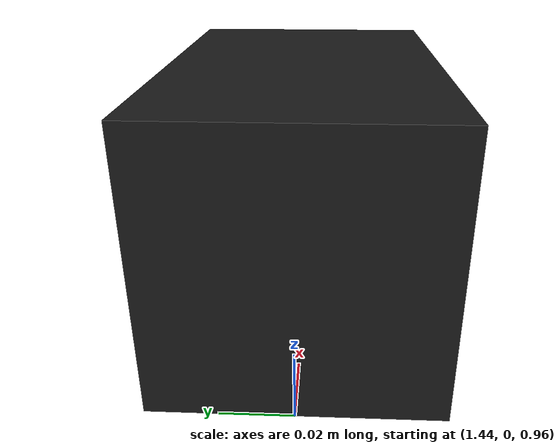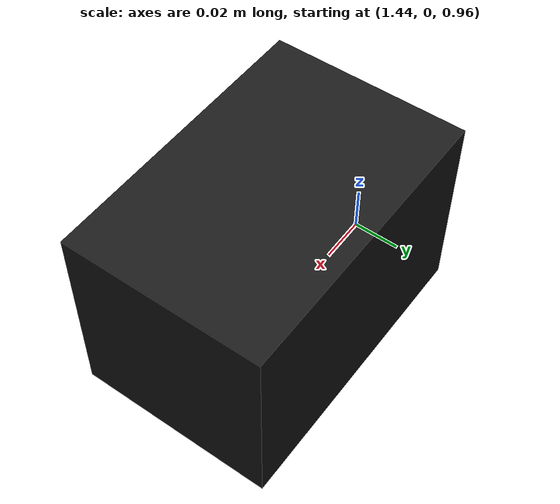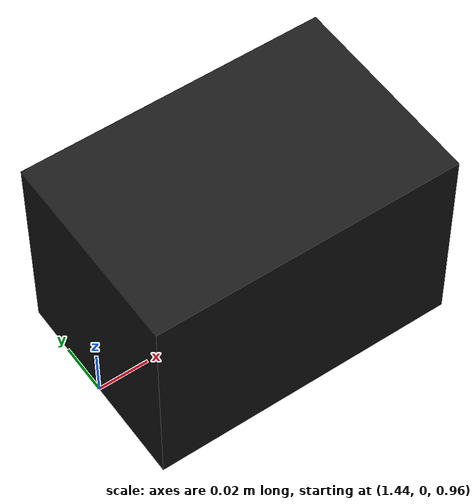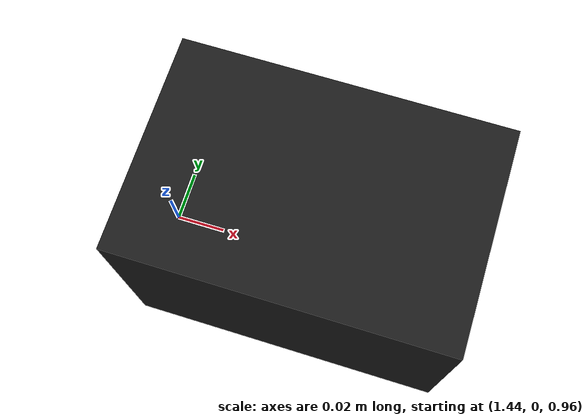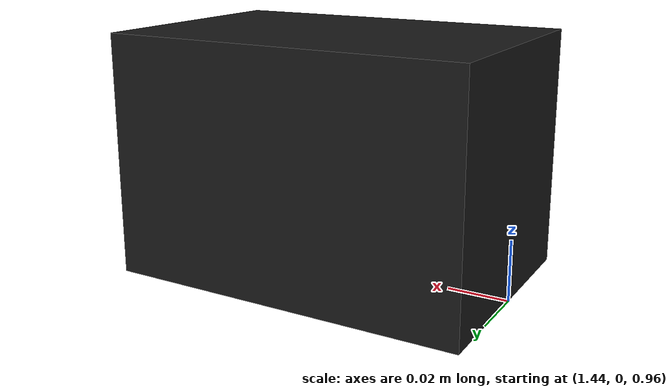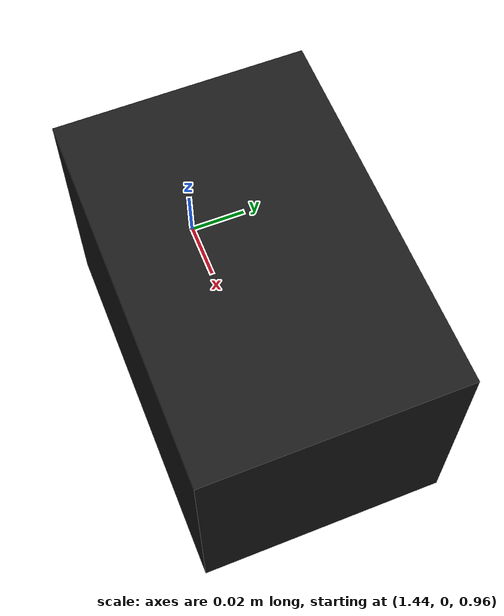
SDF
<sdf version='1.10'>
  <world name='empty'>
    <physics name='1ms' type='ignored'>
      <max_step_size>0.005</max_step_size>
      <real_time_factor>1</real_time_factor>
      <real_time_update_rate>500</real_time_update_rate>
    </physics>
    <plugin name='gz::sim::systems::Physics' filename='gz-sim-physics-system'/>
    <plugin name='gz::sim::systems::UserCommands' filename='gz-sim-user-commands-system'/>
    <plugin name='gz::sim::systems::SceneBroadcaster' filename='gz-sim-scene-broadcaster-system'/>
    <plugin name='gz::sim::systems::Contact' filename='gz-sim-contact-system'/>

    <!-- Gazebo 카메라, 라이다 등의 센서를 작동시키는 시스템 플러그인입니다. -->
    <plugin filename="gz-sim-sensors-system" name="gz::sim::systems::Sensors">
        <render_engine>ogre2</render_engine>
    </plugin>

    <gravity>0 0 -9.8000000000000007</gravity>
    <magnetic_field>5.5644999999999998e-06 2.2875799999999999e-05 -4.2388400000000002e-05</magnetic_field>
    <atmosphere type='adiabatic'/>
    <scene>
      <ambient>0.400000006 0.400000006 0.400000006 1</ambient>
      <background>0.699999988 0.699999988 0.699999988 1</background>
      <shadows>true</shadows>
    </scene>
    <model name='ground_plane'>
      <static>true</static>
      <link name='link'>
        <collision name='collision'>
          <geometry>
            <plane>
              <normal>0 0 1</normal>
              <size>100 100</size>
            </plane>
          </geometry>
          <surface>
            <friction>
              <ode/>
            </friction>
            <bounce/>
            <contact/>
          </surface>
        </collision>
        <visual name='visual'>
          <geometry>
            <plane>
              <normal>0 0 1</normal>
              <size>100 100</size>
            </plane>
          </geometry>
          <material>
            <ambient>0.800000012 0.800000012 0.800000012 1</ambient>
            <diffuse>0.800000012 0.800000012 0.800000012 1</diffuse>
            <specular>0.800000012 0.800000012 0.800000012 1</specular>
          </material>
        </visual>
        <pose>0 0 0 0 0 0</pose>
        <inertial>
          <pose>0 0 0 0 0 0</pose>
          <mass>1</mass>
          <inertia>
            <ixx>1</ixx>
            <ixy>0</ixy>
            <ixz>0</ixz>
            <iyy>1</iyy>
            <iyz>0</iyz>
            <izz>1</izz>
          </inertia>
        </inertial>
        <enable_wind>false</enable_wind>
      </link>
      <pose>0 0 0 0 0 0</pose>
      <self_collide>false</self_collide>
    </model>
<gui>
  <camera name="user_camera">
    <pose>0 0 10 0 -1.57 0</pose>
  </camera>
</gui>

    <light name='sun' type='directional'>
      <pose>0 0 10 0 0 0</pose>
      <cast_shadows>true</cast_shadows>
      <intensity>1</intensity>
      <direction>-0.5 0.10000000000000001 -0.90000000000000002</direction>
      <diffuse>0.800000012 0.800000012 0.800000012 1</diffuse>
      <specular>0.200000003 0.200000003 0.200000003 1</specular>
      <attenuation>
        <range>1000</range>
        <linear>0.01</linear>
        <constant>0.90000000000000002</constant>
        <quadratic>0.001</quadratic>
      </attenuation>
      <spot>
        <inner_angle>0</inner_angle>
        <outer_angle>0</outer_angle>
        <falloff>0</falloff>
      </spot>
    </light>
<!--
  OMX-AI 로봇을 정면에서 촬영하는 고정 카메라 모델입니다.
  static=true이므로 중력의 영향을 받지 않고 월드의 지정 위치에 고정됩니다.
-->
<model name="front_camera">
  <static>true</static>

  <!--
    카메라의 월드 좌표입니다.
    xyz: x y z
    rpy: roll pitch yaw

    현재 예시는 로봇 앞쪽 x=1.5m, 높이 z=1.0m에 배치한 뒤
    로봇 원점 방향을 바라보도록 yaw를 약 180도 회전시킵니다.
  -->
  <pose>1.5 0 1.0 0 0 3.14159</pose>

  <link name="front_camera_link">

    <!-- 카메라 본체를 화면에서 확인하기 위한 시각 모델입니다. -->
    <visual name="camera_body_visual">
      <geometry>
        <box>
          <size>0.12 0.08 0.08</size>
        </box>
      </geometry>

      <material>
        <ambient>0.1 0.1 0.1 1</ambient>
        <diffuse>0.1 0.1 0.1 1</diffuse>
      </material>
    </visual>

    <!--
      Gazebo 카메라 센서입니다.
      update_rate는 초당 이미지 발행 횟수입니다.
    -->
    <sensor name="front_camera_sensor" type="camera">
      <always_on>true</always_on>
      <update_rate>30</update_rate>
      <visualize>true</visualize>

      <!--
        카메라 센서의 상대 위치와 방향입니다.
        Gazebo 카메라는 기본적으로 센서의 +X 방향을 바라봅니다.
      -->
      <pose>0 0 0 0 0 0</pose>

      <camera>
        <horizontal_fov>1.047</horizontal_fov>

        <image>
          <width>1280</width>
          <height>720</height>
          <format>R8G8B8</format>
        </image>

        <clip>
          <near>0.05</near>
          <far>100</far>
        </clip>
      </camera>

      <!-- Gazebo Transport 토픽 이름입니다. -->
      <topic>/front_camera/image</topic>
    </sensor>
  </link>
</model>
  </world>
</sdf>
